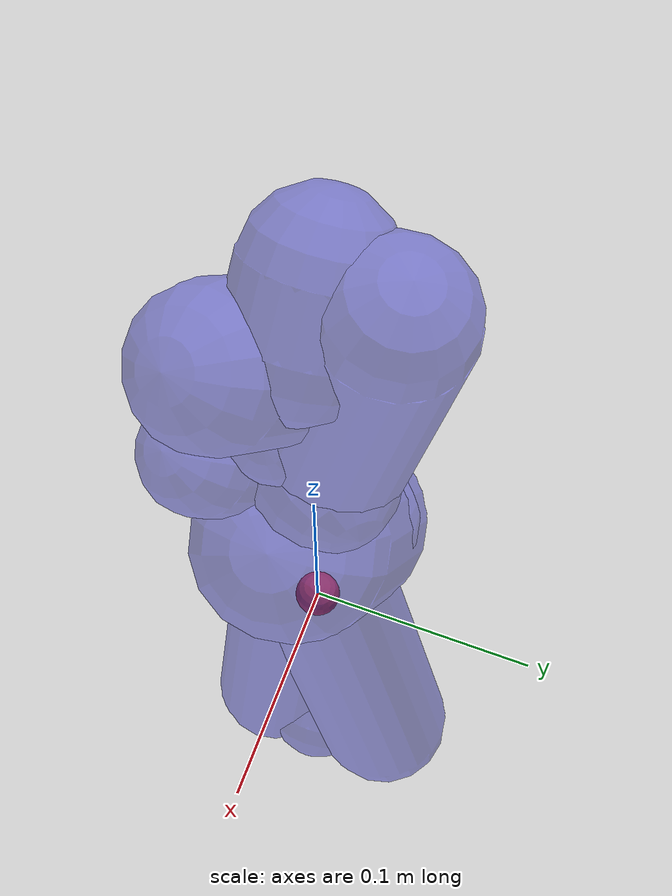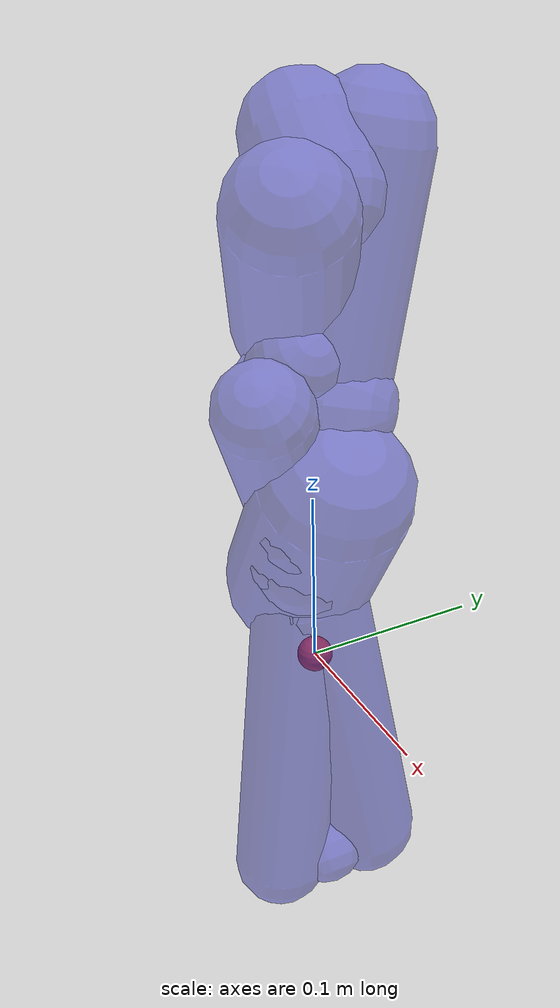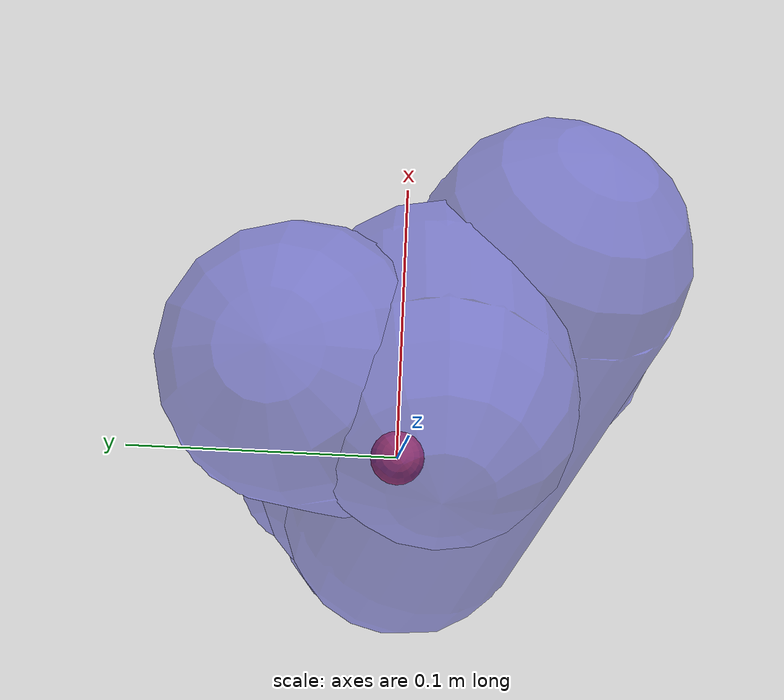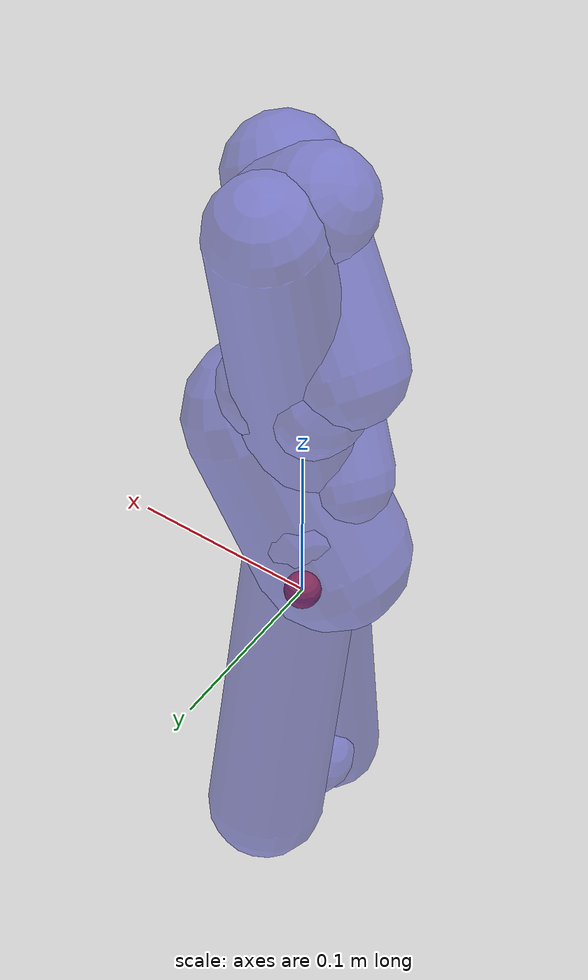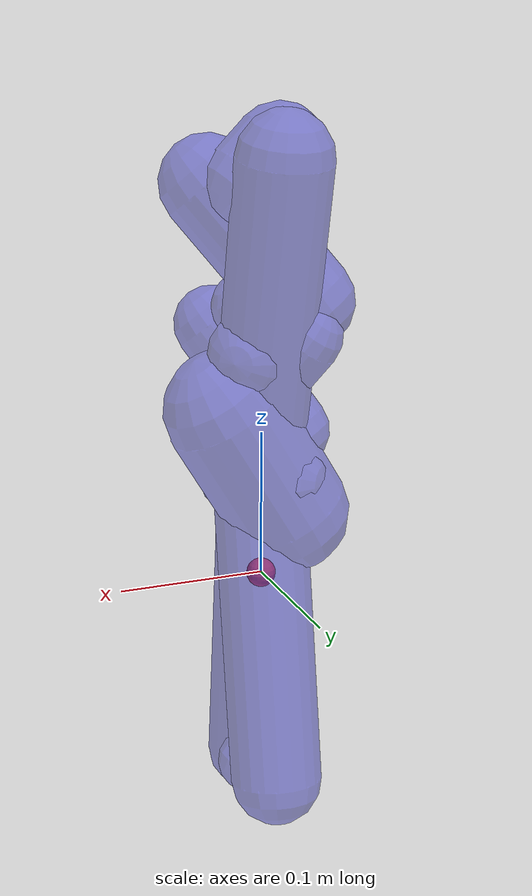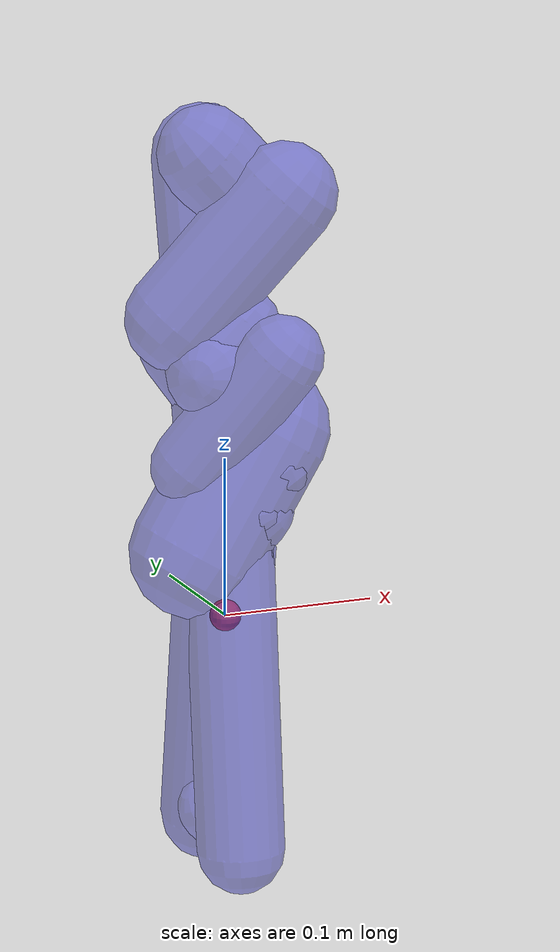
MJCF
<mujoco model="jaco_v2">
  <compiler angle="radian"/>
  <actuator>
    <motor ctrllimited="true" ctrlrange="-30.5 30.5" joint="j2s7s300_joint_1" name="torq_j1"/>
    <motor ctrllimited="true" ctrlrange="-30.5 30.5" joint="j2s7s300_joint_2" name="torq_j2"/>
    <motor ctrllimited="true" ctrlrange="-30.5 30.5" joint="j2s7s300_joint_3" name="torq_j3"/>
    <motor ctrllimited="true" ctrlrange="-30.5 30.5" joint="j2s7s300_joint_4" name="torq_j4"/>
    <motor ctrllimited="true" ctrlrange="-30.5 30.5" joint="j2s7s300_joint_5" name="torq_j5"/>
    <motor ctrllimited="true" ctrlrange="-6.8 6.8" joint="j2s7s300_joint_6" name="torq_j6"/>
    <motor ctrllimited="true" ctrlrange="-6.8 6.8" joint="j2s7s300_joint_7" name="torq_j7"/>
  </actuator>
  <asset>
    <mesh name="base" file="meshes/base.stl"/>
    <mesh name="shoulder" file="meshes/shoulder.stl"/>
    <mesh name="ring_big" file="meshes/ring_big.stl"/>
    <mesh name="arm_half_1" file="meshes/arm_half_1.stl"/>
    <mesh name="arm_half_2" file="meshes/arm_half_2.stl"/>
    <mesh name="forearm" file="meshes/forearm.stl"/>
    <mesh name="ring_small" file="meshes/ring_small.stl"/>
    <mesh name="wrist_spherical_1" file="meshes/wrist_spherical_1.stl"/>
    <mesh name="wrist_spherical_2" file="meshes/wrist_spherical_2.stl"/>
    <texture type="cube" name="carbon_tex" builtin="flat" width="100" height="100" rgb1="1 1 1" rgb2="1 1 1"/>
    <texture type="cube" name="grey_plastic_tex" builtin="flat" width="100" height="100" rgb1="1 1 1" rgb2="1 1 1"/>
    <material name="carbon_jaco" texture="carbon_tex" rgba="0.05 0.05 0.05 1"/>
    <material name="grey_plastic_jaco" texture="grey_plastic_tex" rgba="0.88 0.86 0.86 1"/>
  </asset>
  <worldbody>
    <body name="base" pos="0 0 0">
      <camera mode="fixed" name="robotview" pos="1.0 0 0.4" quat="0.653 0.271 0.271 0.653"/>
      <inertial diaginertia="0 0 0" mass="0" pos="0 0 0"/>
      <body name="j2s7s300_link_0" pos="0 0 0">
        <site name="right_center" pos="0 0 0" size="0.01" rgba="1 0.3 0.3 1" group="2"/>
        <inertial pos="0 0 0.05" mass="4" diaginertia="0.4 0.4 0.4"/>
        <geom type="capsule" contype="0" conaffinity="0" group="1" material="carbon_jaco" pos="0.003179 0.000247 0.079906" quat="0.963627 0.006727 0.267167 0.000000" size="0.041619 0.043854" rgba="0.2 0.2 0.8 0.5"/>
        <geom type="capsule" contype="0" conaffinity="1" material="carbon_jaco" name="base_collision" pos="0.003179 0.000247 0.079906" quat="0.963627 0.006727 0.267167 0.000000" size="0.041619 0.043854" rgba="0.2 0.2 0.8 0.5"/>
        <body name="j2s7s300_link_1" pos="0 0 0.15675" quat="0 0 1 0">
          <inertial pos="0 -0.002 -0.0605" mass="0.7477" diaginertia="0.00152032 0.00152032 0.00059816"/>
          <joint name="j2s7s300_joint_1" pos="0 0 0" axis="0 0 1" limited="true" range="-6.28319 6.28319" damping="0.1" frictionloss="0.01"/>
          <geom type="capsule" contype="0" conaffinity="0" group="1" material="carbon_jaco" name="s_visual" pos="0.000075 -0.010161 -0.068560" quat="0.937754 -0.156430 0.310075 0.000000" size="0.031990 0.049795" rgba="0.2 0.2 0.8 0.5"/>
          <geom type="capsule" contype="0" conaffinity="0" group="1" material="grey_plastic_jaco" name="s_ring_visual" pos="-0.000000 -0.000000 0.000000" quat="0.707107 0.500000 0.500000 0.000000" size="0.030339 0.014222" rgba="0.2 0.2 0.8 0.5"/>
          <geom type="capsule" contype="0" conaffinity="1" material="carbon_jaco" name="s_collision" pos="0.000075 -0.010161 -0.068560" quat="0.937754 -0.156430 0.310075 0.000000" size="0.031990 0.049795" rgba="0.2 0.2 0.8 0.5"/>
          <body name="j2s7s300_link_2" pos="0 0.0016 -0.11875" quat="0 0 -0.707107 0.707107">
            <inertial pos="0 -0.103563 0" quat="0.707107 0.707107 0 0" mass="0.8447" diaginertia="0.00247074 0.00247074 0.000380115"/>
            <joint name="j2s7s300_joint_2" pos="0 0 0" axis="0 0 1" limited="true" range="0.820305 5.46288" damping="0.1" frictionloss="0.01"/>
            <geom type="capsule" contype="0" conaffinity="0" group="1" material="carbon_jaco" name="ah1_visual" pos="-0.000070 -0.085934 -0.013300" quat="0.770876 0.636966 0.004957 0.000000" size="0.031475 0.095622" rgba="0.2 0.2 0.8 0.5"/>
            <geom type="capsule" contype="0" conaffinity="0" group="1" material="grey_plastic_jaco" name="ah1_ring_visual" pos="-0.000000 -0.000000 0.000000" quat="0.707107 0.500000 0.500000 0.000000" size="0.030339 0.014222" rgba="0.2 0.2 0.8 0.5"/>
            <geom type="capsule" material="carbon_jaco" name="ah1_collision" pos="-0.000070 -0.085934 -0.013300" quat="0.770876 0.636966 0.004957 0.000000" size="0.031475 0.095622" rgba="0.2 0.2 0.8 0.5"/>
            <body name="j2s7s300_link_3" pos="0 -0.205 0" quat="0.707107 -0.707107 0 0">
              <inertial pos="0 0 -0.102245" mass="0.8447" diaginertia="0.00247074 0.00247074 0.000380115"/>
              <joint name="j2s7s300_joint_3" pos="0 0 0" axis="0 0 1" limited="true" range="-6.28319 6.28319" damping="0.1" frictionloss="0.01"/>
              <geom type="capsule" contype="0" conaffinity="0" group="1" material="carbon_jaco" name="ah2_visual" pos="0.000070 0.013425 -0.118941" quat="0.995501 0.094676 -0.003838 0.000000" size="0.031475 0.095622" rgba="0.2 0.2 0.8 0.5"/>
              <geom type="capsule" contype="0" conaffinity="0" group="1" material="grey_plastic_jaco" name="ah2_ring_visual" pos="-0.000000 -0.000000 0.000000" quat="0.707107 0.500000 0.500000 0.000000" size="0.030339 0.014222" rgba="0.2 0.2 0.8 0.5"/>
              <geom type="capsule" material="carbon_jaco" name="ah2_collision" pos="0.000070 0.013425 -0.118941" quat="0.995501 0.094676 -0.003838 0.000000" size="0.031475 0.095622" rgba="0.2 0.2 0.8 0.5"/>
              <body name="j2s7s300_link_4" pos="0 0 -0.205" quat="0 0 0.707107 0.707107">
                <inertial pos="0 0.081 -0.0086" quat="0.707107 0.707107 0 0" mass="0.6763" diaginertia="0.00142022 0.00142022 0.000304335"/>
                <joint name="j2s7s300_joint_4" pos="0 0 0" axis="0 0 1" limited="true" range="0.523599 5.75959" damping="0.1" frictionloss="0.01"/>
                <geom type="capsule" contype="0" conaffinity="0" group="1" material="carbon_jaco" name="f_visual" pos="-0.000000 0.084610 -0.017514" quat="0.740157 -0.672434 0.000057 0.000000" size="0.027973 0.097693" rgba="0.2 0.2 0.8 0.5"/>
                <geom type="capsule" contype="0" conaffinity="0" group="1" material="grey_plastic_jaco" name="f_ring_visual" pos="-0.000000 0.000000 -0.000000" quat="0.707107 0.500000 -0.500000 0.000000" size="0.023523 0.010498" rgba="0.2 0.2 0.8 0.5"/>
                <geom type="capsule" material="carbon_jaco" name="f_collision" pos="-0.000000 0.084610 -0.017514" quat="0.740157 -0.672434 0.000057 0.000000" size="0.027973 0.097693" rgba="0.2 0.2 0.8 0.5"/>
                <body name="j2s7s300_link_5" pos="0 0.2073 -0.0114" quat="0 0 -0.707107 0.707107">
                  <inertial pos="0 0.00288489 -0.0541933" mass="0.463" diaginertia="0.000432132 0.000432132 9.26e-05"/>
                  <joint name="j2s7s300_joint_5" pos="0 0 0" axis="0 0 1" limited="true" range="-6.28319 6.28319" damping="0.1" frictionloss="0.01"/>
                  <geom type="capsule" contype="0" conaffinity="0" group="1" material="carbon_jaco" name="ws1_visual" pos="-0.000749 0.011157 -0.060245" quat="0.943950 0.196775 -0.265025 0.000000" size="0.025895 0.044588" rgba="0.2 0.2 0.8 0.5"/>
                  <geom type="capsule" contype="0" conaffinity="0" group="1" material="grey_plastic_jaco" name="ws1_ring_visual" pos="-0.000000 0.000000 -0.000000" quat="0.707107 0.500000 -0.500000 0.000000" size="0.023523 0.010498" rgba="0.2 0.2 0.8 0.5"/>
                  <geom type="capsule" material="carbon_jaco" name="ws1_collision" pos="-0.000749 0.011157 -0.060245" quat="0.943950 0.196775 -0.265025 0.000000" size="0.025895 0.044588" rgba="0.2 0.2 0.8 0.5"/>
                  <body name="j2s7s300_link_6" pos="0 0 -0.10375" quat="0 0 0.707107 0.707107">
                    <inertial pos="0 0.0497209 -0.00285628" quat="0.707107 0.707107 0 0" mass="0.463" diaginertia="0.000432132 0.000432132 9.26e-05"/>
                    <joint name="j2s7s300_joint_6" pos="0 0 0" axis="0 0 1" limited="true" range="1.13446 5.14872" damping="0.01" frictionloss="0.01"/>
                    <geom type="capsule" contype="0" conaffinity="0" group="1" material="carbon_jaco" name="ws2_visual" pos="-0.000749 0.043380 -0.011032" quat="0.828098 -0.472216 -0.302102 0.000000" size="0.025895 0.044588" rgba="0.2 0.2 0.8 0.5"/>
                    <geom type="capsule" contype="0" conaffinity="0" group="1" material="grey_plastic_jaco" name="ws2_ring_visual" pos="-0.000000 0.000000 -0.000000" quat="0.707107 0.500000 -0.500000 0.000000" size="0.023523 0.010498" rgba="0.2 0.2 0.8 0.5"/>
                    <geom type="capsule" material="carbon_jaco" name="ws2_collision" pos="-0.000749 0.043380 -0.011032" quat="0.828098 -0.472216 -0.302102 0.000000" size="0.025895 0.044588" rgba="0.2 0.2 0.8 0.5"/>
                    <body name="j2s7s300_link_7" pos="0 0.10375 0" quat="0 0 -0.707107 0.707107">
                      <inertial pos="0 0 -0.06" quat="0.5 0.5 -0.5 0.5" mass="1e-6" diaginertia="1e-6 1e-6 1e-6"/>
                      <joint name="j2s7s300_joint_7" pos="0 0 0" axis="0 0 1" limited="true" range="-6.28319 6.28319" damping="0.01" frictionloss="0.01"/>
                      <body name="right_hand" pos="0 0 0" quat="0 1 0 0">
                        <camera mode="fixed" name="eye_in_hand" pos="0.08 0 0" quat="0 0.707108 0.707108 0" fovy="75"/>
                      </body>
                    </body>
                  </body>
                </body>
              </body>
            </body>
          </body>
        </body>
      </body>
    </body>
  </worldbody>
</mujoco>
